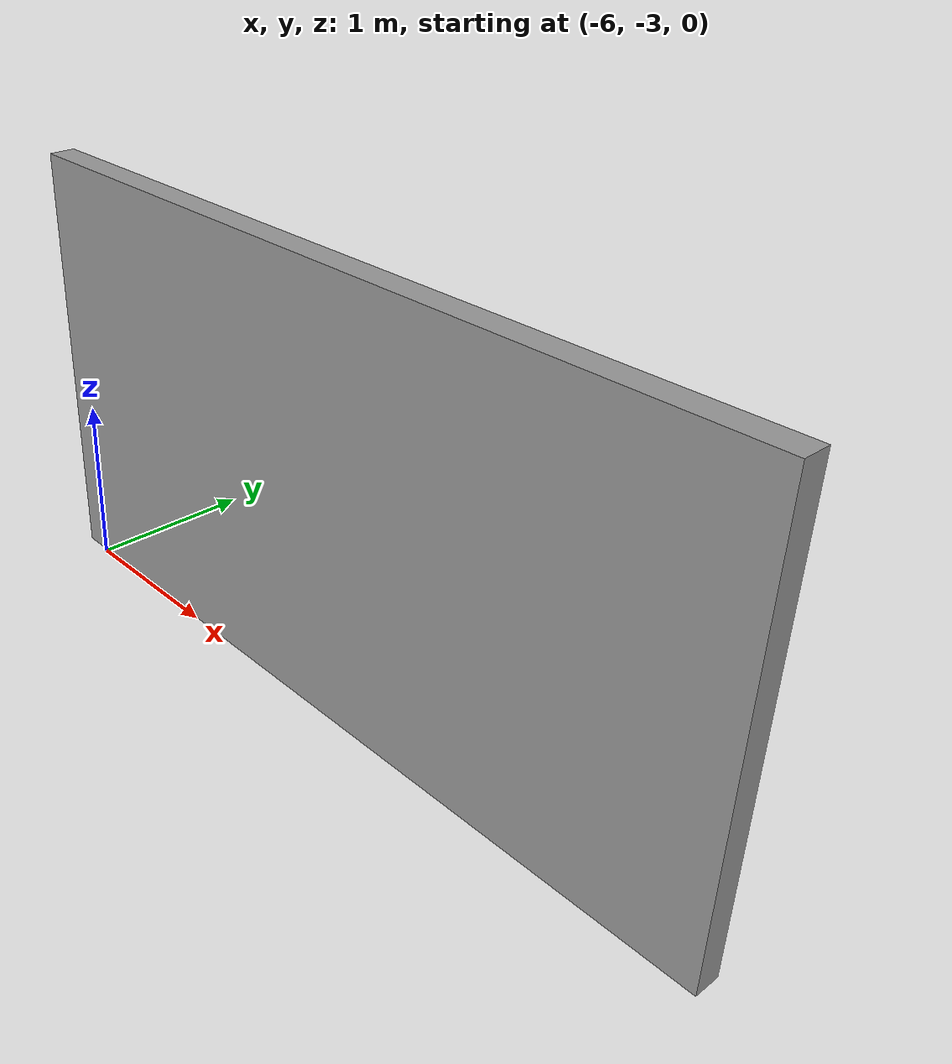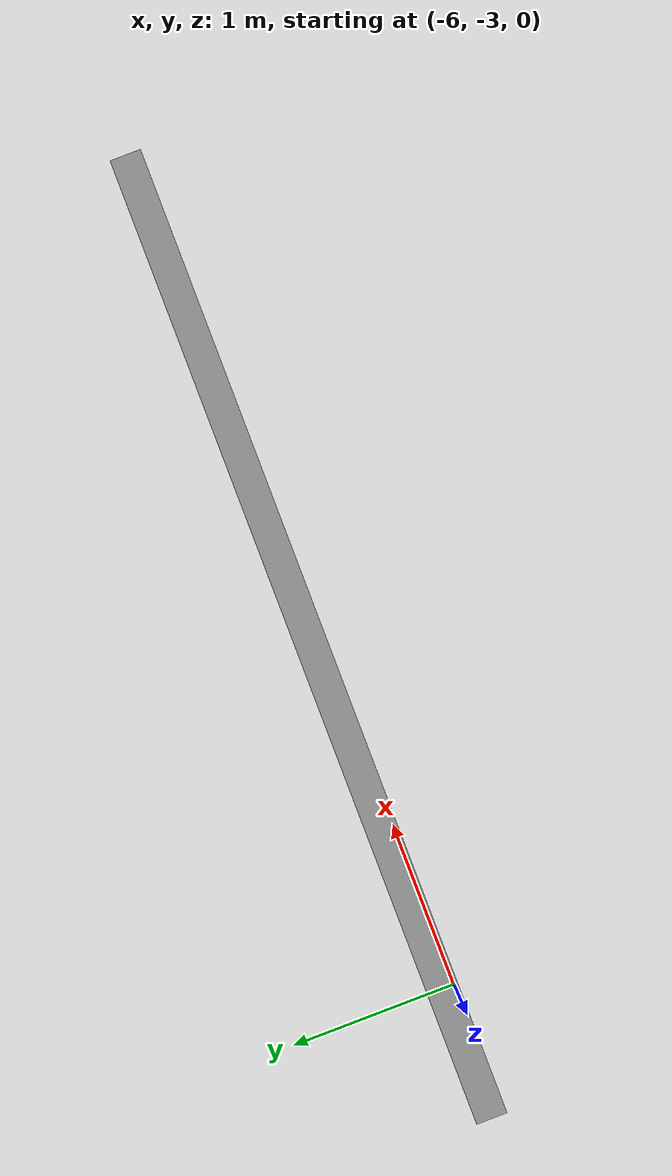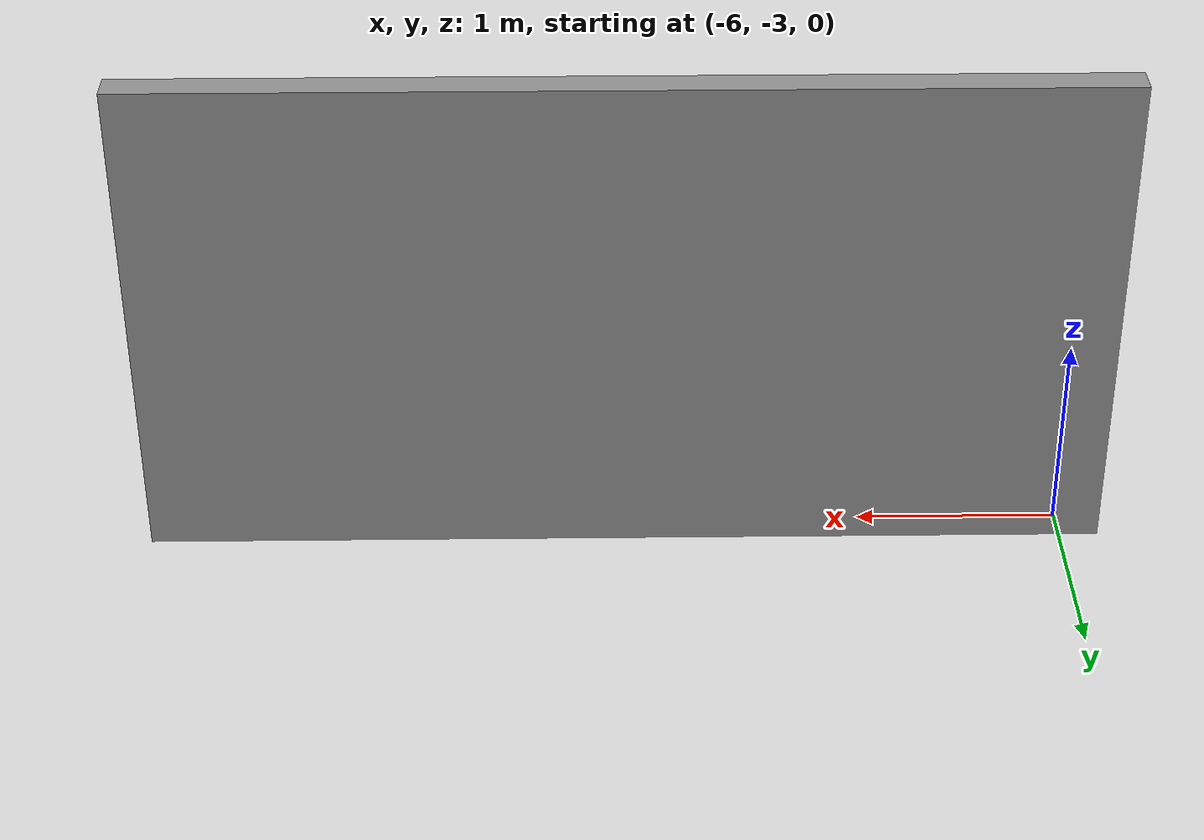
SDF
<sdf version="1.7">
 <world name="default">
  <light name="sun" type="directional">
   <pose>0 0 10 0 -0 0</pose>
   <diffuse>0.8 0.8 0.8 1</diffuse>
   <specular>0.2 0.2 0.2 1</specular>
   <attenuation>
    <range>1000</range>
    <constant>0.9</constant>
    <linear>0.01</linear>
    <quadratic>0.001</quadratic>
   </attenuation>
   <direction>-0.5 0.1 -0.9</direction>
   <spot><inner_angle>0</inner_angle><outer_angle>0</outer_angle><falloff>0</falloff></spot>
  </light>
  <gravity>0 0 -9.8</gravity>
  <magnetic_field>6e-06 2.3e-05 -4.2e-05</magnetic_field>
  <atmosphere type="adiabatic"/>
  <physics type="ode">
   <max_step_size>0.001</max_step_size>
   <real_time_factor>1</real_time_factor>
   <real_time_update_rate>1000</real_time_update_rate>
  </physics>
  <scene><ambient>0.4 0.4 0.4 1</ambient><background>0.7 0.7 0.7 1</background><shadows>1</shadows></scene>
  <spherical_coordinates>
   <surface_model>EARTH_WGS84</surface_model>
   <latitude_deg>0</latitude_deg>
   <longitude_deg>0</longitude_deg>
   <elevation>0</elevation>
   <heading_deg>0</heading_deg>
  </spherical_coordinates>
  <model name="wall3">
   <pose>-3.0975 -1.4975 0 0 -0 0</pose>
   <link name="Wall_4">
    <collision name="Wall_4_Collision">
     <geometry><box><size>4.75 0.15 2.5</size></box></geometry>
     <pose>0 0 1.25 0 -0 0</pose>
    </collision>
    <visual name="Wall_4_Visual">
     <pose>0 0 1.25 0 -0 0</pose>
     <geometry><box><size>4.75 0.15 2.5</size></box></geometry>
     <material>
      <script><uri>file://media/materials/scripts/gazebo.material</uri><name>Gazebo/Grey</name></script>
      <ambient>1 1 1 1</ambient>
     </material>
     <meta><layer>0</layer></meta>
    </visual>
    <pose>-0.7225 -1.4225 0 0 -0 3.14159</pose>
   </link>
   <static>1</static>
  </model>
 </world>
</sdf>
